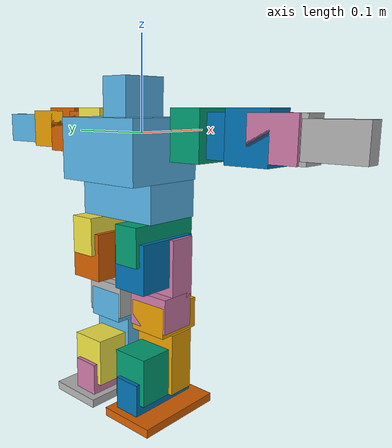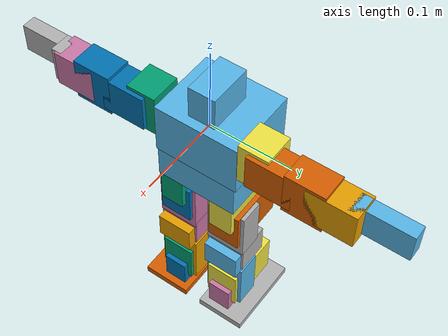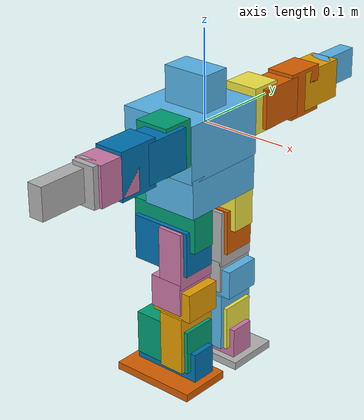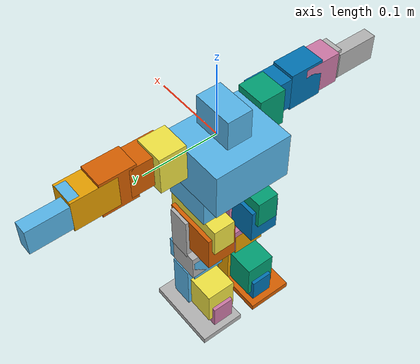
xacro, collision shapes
<?xml version="1.0"?>
<robot xmlns:xacro="http://www.ros.org/wiki/xacro" name="bioloid_compr_18_servos">
<!-- Bioloid Comprehensive humanoid with 18 AX-12+ servos -->

<xacro:property name="pi" value="3.14159"/>
<xacro:property name="cad_dir" value="file:///mnt/STORAGE/Dropbox/Personal/Programming/Bioloid/CAD"/>
<!-- Typically, STL/DAE model units are in mm, but RViz units are in m, hence models must be scaled down by 1000. -->
<xacro:macro name="default_geometry" params="cad_file suffix:=_FCD-Conv_BDR-Col extension:=dae">
    <geometry>
        <mesh filename="${cad_dir}/${cad_file}${suffix}.${extension}" scale="0.001 0.001 0.001"/>
    </geometry>
</xacro:macro>
<xacro:macro name="z_rot">
    <axis xyz="0 0 1"/>
</xacro:macro>
<xacro:macro name="shoulder_swing_joint" params="prefix reflect">
    <joint name="${prefix}_shoulder_swing_joint" type="revolute">
        <parent link="torso_link"/>
        <origin xyz="${reflect*(-0.032)} 0 0" rpy="${reflect*(-pi/2)} 0 ${reflect*(pi/2)}"/>
        <xacro:z_rot/>
        <child link="${prefix}_shoulder_swing_link"/>
        <limit lower="${-pi}" upper="${pi}" effort="10" velocity="1.0"/>
    </joint>
</xacro:macro>
<xacro:macro name="shoulder_lateral_joint" params="prefix reflect">
    <joint name="${prefix}_shoulder_lateral_joint" type="revolute">
        <parent link="${prefix}_shoulder_swing_link"/>
        <origin xyz="${reflect*(-0.014)} 0 ${reflect*0.044}" rpy="${-pi/2} ${pi/2} 0"/>
        <xacro:z_rot/>
        <child link="${prefix}_upper_arm_link"/>
        <limit lower="${-pi}" upper="${pi}" effort="10" velocity="1.0"/>
    </joint>
</xacro:macro>
<xacro:macro name="elbow_joint" params="prefix reflect">
    <joint name="${prefix}_elbow_joint" type="revolute">
        <parent link="${prefix}_upper_arm_link"/>
        <origin xyz="${reflect*-0.0675} 0 0" rpy="0 0 0"/>
        <xacro:z_rot/>
        <child link="${prefix}_lower_arm_link"/>
        <limit lower="${-1.77}" upper="${1.77}" effort="10" velocity="1.0"/>
    </joint>
</xacro:macro>
<xacro:macro name="hand_joint" params="prefix">
    <joint name="${prefix}_hand_joint" type="fixed">
        <parent link="${prefix}_lower_arm_link"/>
        <origin xyz="0 0 0" rpy="0 0 0"/>
        <child link="${prefix}_hand_link"/>
    </joint>
</xacro:macro>
<xacro:macro name="hip_twist_joint" params="prefix reflect rotatex rotatez">
    <joint name="${prefix}_hip_twist_joint" type="revolute">
        <parent link="torso_link"/>
        <origin xyz="${reflect*(-0.033)} 0.016 -0.0655" rpy="${rotatex*pi} 0 ${rotatez*pi}"/>
        <xacro:z_rot/>
        <child link="${prefix}_hip_twist_link"/>
        <limit lower="${-pi/4}" upper="${pi/4}" effort="10" velocity="1.0"/>
    </joint>
</xacro:macro>
<xacro:macro name="hip_lateral_joint" params="prefix reflect">
    <joint name="${prefix}_hip_lateral_joint" type="revolute">
        <parent link="${prefix}_hip_twist_link"/>
        <origin xyz="0 -0.0153 ${reflect*0.05}" rpy="${reflect*pi/2} 0 0"/>
        <xacro:z_rot/>
        <child link="${prefix}_hip_lateral_link"/>
        <limit lower="${-0.3}" upper="${0.3}" effort="10" velocity="1.0"/>
    </joint>
</xacro:macro>
<xacro:macro name="hip_swing_joint" params="prefix reflect rotatex">
    <joint name="${prefix}_hip_swing_joint" type="revolute">
        <parent link="${prefix}_hip_lateral_link"/>
        <origin xyz="0 0 ${reflect*(-0.032)}" rpy="${rotatex*pi} ${-pi/2} 0"/>
        <xacro:z_rot/>
        <child link="${prefix}_upper_leg_link"/>
        <limit lower="${-pi/2}" upper="${pi/2}" effort="10" velocity="1.0"/>
    </joint>
</xacro:macro>
<xacro:macro name="knee_joint" params="prefix reflect">
    <joint name="${prefix}_knee_joint" type="revolute">
        <parent link="${prefix}_upper_leg_link"/>
        <origin xyz="${reflect*0.0145} ${reflect*0.075} 0" rpy="0 0 0"/>
        <xacro:z_rot/>
        <child link="${prefix}_lower_leg_link"/>
        <limit lower="${-pi}" upper="${0}" effort="10" velocity="1.0"/>
    </joint>
</xacro:macro>
<xacro:macro name="ankle_swing_joint" params="prefix reflect">
    <joint name="${prefix}_ankle_swing_joint" type="revolute">
        <parent link="${prefix}_lower_leg_link"/>
        <origin xyz="${reflect*-0.0145} ${reflect*0.071} 0" rpy="0 0 0"/>
        <xacro:z_rot/>
        <child link="${prefix}_ankle_swing_link"/>
        <limit lower="${-0.45}" upper="${pi/2}" effort="10" velocity="1.0"/>
    </joint>
</xacro:macro>
<xacro:macro name="ankle_lateral_joint" params="prefix reflect">
    <joint name="${prefix}_ankle_lateral_joint" type="revolute">
        <parent link="${prefix}_ankle_swing_link"/>
        <origin xyz="${reflect*0.032} 0 0" rpy="0 ${pi/2} 0"/>
        <xacro:z_rot/>
        <child link="${prefix}_ankle_lateral_link"/>
        <limit lower="${-0.7}" upper="${0.7}" effort="10" velocity="1.0"/>
    </joint>
</xacro:macro>
<xacro:macro name="foot_joint" params="prefix">
    <joint name="${prefix}_foot_joint" type="fixed">
        <parent link="${prefix}_ankle_lateral_link"/>
        <origin xyz="0 0 0" rpy="0 0 0"/>
        <child link="${prefix}_foot_link"/>
    </joint>
</xacro:macro>

<!-- Base -->
<joint name="base_to_torso_joint" type="fixed">
    <parent link="base_link"/>
    <origin xyz="0 0 0" rpy="0 0 ${pi/2}"/>
    <child link="torso_link"/>
</joint>
<link name="base_link">
</link>

<!-- Torso -->
<link name="torso_link">
    <visual>
        <xacro:default_geometry cad_file="BPF-CHEST-F"/>
        <origin rpy="${pi/2} 0 0"/>
    </visual>
    <visual>
        <xacro:default_geometry cad_file="BPF-CHEST-B"/>
        <origin rpy="${pi/2} 0 0"/>
    </visual>
    <visual>
        <xacro:default_geometry cad_file="CM-5"/>
        <origin xyz="0 0.032 -0.015" rpy="0 ${pi} 0"/>
    </visual>
    <!-- Sensor 100 -->
    <visual>
        <xacro:default_geometry cad_file="AX-S1"/>
        <origin xyz="0 0 0.025" rpy="${-pi/2} 0 ${pi}"/>
    </visual>
    <!-- Motor 1 -->
    <visual>
        <xacro:default_geometry cad_file="AX-12"/>
        <origin xyz="-0.032 0 0" rpy="${pi/2} 0 ${-pi/2}"/>
    </visual>
    <!-- Motor 2 -->
    <visual>
        <xacro:default_geometry cad_file="AX-12"/>
        <origin xyz="0.032 0 0" rpy="${pi/2} 0 ${pi/2}"/>
    </visual>
    <visual>
        <xacro:default_geometry cad_file="FP04-F8"/>
        <origin xyz="0 0.0255 -0.0465" rpy="${-pi/2} 0 ${pi/2}"/>
    </visual>
    <visual>
        <xacro:default_geometry cad_file="FP04-F8"/>
        <origin xyz="0 0.0255 -0.0843" rpy="${pi/2} 0 ${pi/2}"/>
    </visual>
    <!-- Motor 7 -->
    <visual>
        <xacro:default_geometry cad_file="AX-12"/>
        <origin xyz="-0.033 0.016 -0.0655" rpy="0 ${pi} 0"/>
    </visual>
    <!-- Motor 8 -->
    <visual>
        <xacro:default_geometry cad_file="AX-12"/>
        <origin xyz="0.033 0.016 -0.0655" rpy="0 ${pi} 0"/>
    </visual>
    <collision name="head_collision">
        <origin xyz="0 0.0122 0.035"/>
        <geometry>
		    <box size="0.033 0.054 0.044"/>
        </geometry>
    </collision>
    <collision name="torso_collision_top">
        <origin xyz="0 0.019 -0.015"/>
        <geometry>
		    <box size="0.103 0.0905 0.0635"/>
        </geometry>
    </collision>
    <collision name="torso_collision_bottom">
        <origin xyz="0 0.00625 -0.0648"/>
        <geometry>
		    <box size="0.099 0.065 0.043"/>
        </geometry>
    </collision>
    <inertial>
      <origin xyz="0 0 0"/>
      <mass value="1.0"/>
      <inertia  ixx="0.001" ixy="0.0"  ixz="0.0"  iyy="0.001"  iyz="0.0"  izz="0.001"/>
    </inertial>
</link>

<!-- Torso to right shoulder -->
<xacro:shoulder_swing_joint prefix="right" reflect="1"/>
<link name="right_shoulder_swing_link">
    <visual>
        <xacro:default_geometry cad_file="FP04-F1"/>
        <origin xyz="-0.014 0 0.044" rpy="0 ${pi} ${-pi/2}"/>
    </visual>
    <collision name="right_shoulder_collision">
        <origin xyz="-0.006 0 0.0375"/>
        <geometry>
		    <box size="0.039 0.052 0.036"/>
        </geometry>
    </collision>
    <inertial>
      <origin xyz="0 0 0"/>
      <mass value="1.0"/>
      <inertia  ixx="0.001" ixy="0.0"  ixz="0.0"  iyy="0.001"  iyz="0.0"  izz="0.001"/>
    </inertial>
</link>

<!-- Torso to left shoulder -->
<xacro:shoulder_swing_joint prefix="left" reflect="-1"/>
<link name="left_shoulder_swing_link">
    <visual>
        <xacro:default_geometry cad_file="FP04-F1"/>
        <origin xyz="0.014 0 -0.044" rpy="0 0 ${pi/2}"/>
    </visual>
    <collision name="left_shoulder_collision">
        <origin xyz="0.006 0 -0.0375"/>
        <geometry>
		    <box size="0.039 0.052 0.036"/>
        </geometry>
    </collision>
    <inertial>
      <origin xyz="0 0 0"/>
      <mass value="1.0"/>
      <inertia  ixx="0.001" ixy="0.0"  ixz="0.0"  iyy="0.001"  iyz="0.0"  izz="0.001"/>
    </inertial>
</link>

<!-- Right shoulder to upper arm -->
<xacro:shoulder_lateral_joint prefix="right" reflect="1"/>
<link name="right_upper_arm_link">
    <visual>
        <xacro:default_geometry cad_file="AX-12"/>
        <origin xyz="0 0 0" rpy="${pi} 0 ${pi/2}"/>
    </visual>
    <visual>
        <xacro:default_geometry cad_file="BPF-BU"/>
        <origin xyz="0 0 0.0185" rpy="${pi/2} 0 0"/>
    </visual>
    <visual>
        <xacro:default_geometry cad_file="BPF-WA"/>
        <origin xyz="0 0 0.019" rpy="${pi/2} 0 0"/>
    </visual>
    <visual>
        <xacro:default_geometry cad_file="FP04-F3"/>
        <origin xyz="-0.0415 0 0" rpy="0 0 ${-pi/2}"/>
    </visual>
    <visual>
        <xacro:default_geometry cad_file="FP04-F2"/>
        <origin xyz="-0.0675 0 0" rpy="0 ${pi/2} 0"/>
    </visual>
    <collision name="right_upper arm_collision_proximal">
        <origin xyz="-0.0148 0 0"/>
        <geometry>
		    <box size="0.054 0.033 0.044"/>
        </geometry>
    </collision>
    <collision name="right_upper arm_collision_distal">
        <origin xyz="-0.0555 0 0"/>
        <geometry>
		    <box size="0.047 0.033 0.052"/>
        </geometry>
    </collision>
    <inertial>
      <origin xyz="0 0 0"/>
      <mass value="1.0"/>
      <inertia  ixx="0.001" ixy="0.0"  ixz="0.0"  iyy="0.001"  iyz="0.0"  izz="0.001"/>
    </inertial>
</link>

<!-- Left shoulder to upper arm -->
<xacro:shoulder_lateral_joint prefix="left" reflect="-1"/>
<link name="left_upper_arm_link">
    <visual>
        <xacro:default_geometry cad_file="AX-12"/>
        <origin xyz="0 0 0" rpy="0 0 ${pi/2}"/>
    </visual>
    <visual>
        <xacro:default_geometry cad_file="BPF-BU"/>
        <origin xyz="0 0 -0.0185" rpy="${-pi/2} 0 0"/>
    </visual>
    <visual>
        <xacro:default_geometry cad_file="BPF-WA"/>
        <origin xyz="0 0 -0.019" rpy="${-pi/2} 0 0"/>
    </visual>
    <visual>
        <xacro:default_geometry cad_file="FP04-F3"/>
        <origin xyz="0.0415 0 0" rpy="0 0 ${pi/2}"/>
    </visual>
    <visual>
        <xacro:default_geometry cad_file="FP04-F2"/>
        <origin xyz="0.0675 0 0" rpy="0 ${-pi/2} 0"/>
    </visual>
    <collision name="left_upper arm_collision_proximal">
        <origin xyz="0.0148 0 0"/>
        <geometry>
		    <box size="0.054 0.033 0.044"/>
        </geometry>
    </collision>
    <collision name="left_upper arm_collision_distal">
        <origin xyz="0.0555 0 0"/>
        <geometry>
		    <box size="0.047 0.033 0.052"/>
        </geometry>
    </collision>
    <inertial>
      <origin xyz="0 0 0"/>
      <mass value="1.0"/>
      <inertia  ixx="0.001" ixy="0.0"  ixz="0.0"  iyy="0.001"  iyz="0.0"  izz="0.001"/>
    </inertial>
</link>

<!-- Right upper arm to lower arm -->
<xacro:elbow_joint prefix="right" reflect="1"/>
<link name="right_lower_arm_link">
    <!-- Motor 5 -->
    <visual>
        <xacro:default_geometry cad_file="AX-12"/>
        <origin xyz="0 0 0" rpy="${pi} 0 ${pi/2}"/>
    </visual>
    <visual>
        <xacro:default_geometry cad_file="BPF-BU"/>
        <origin xyz="0 0 0.0185" rpy="${pi/2} 0 0"/>
    </visual>
    <visual>
        <xacro:default_geometry cad_file="BPF-WA"/>
        <origin xyz="0 0 0.019" rpy="${pi/2} 0 0"/>
    </visual>
    <visual>
        <xacro:default_geometry cad_file="FP04-F3"/>
        <origin xyz="-0.0415 0 0" rpy="0 0 ${-pi/2}"/>
    </visual>
    <collision name="right_lower_arm_collision">
        <origin xyz="-0.0135 0 0"/>
        <geometry>
		    <box size="0.051 0.033 0.044"/>
        </geometry>
    </collision>
    <inertial>
      <origin xyz="0 0 0"/>
      <mass value="1.0"/>
      <inertia  ixx="0.001" ixy="0.0"  ixz="0.0"  iyy="0.001"  iyz="0.0"  izz="0.001"/>
    </inertial>
</link>

<!-- Right lower arm to hand -->
<xacro:hand_joint prefix="right"/>
<link name="right_hand_link">
    <visual>
        <xacro:default_geometry cad_file="FP04-F11"/>
        <origin xyz="-0.0415 0 0" rpy="${-pi} ${pi/2} 0"/>
    </visual>
    <collision name="right_palm_collision">
        <origin xyz="-0.039 0 0"/>
        <geometry>
		    <box size="0.0131 0.0265 0.044"/>
        </geometry>
    </collision>
    <collision name="right_fingers_collision">
        <origin xyz="-0.0701 -0.0077 0"/>
        <geometry>
		    <box size="0.0575 0.0175 0.035"/>
        </geometry>
    </collision>
    <inertial>
      <origin xyz="0 0 0"/>
      <mass value="1.0"/>
      <inertia  ixx="0.001" ixy="0.0"  ixz="0.0"  iyy="0.001"  iyz="0.0"  izz="0.001"/>
    </inertial>
</link>

<!-- Left upper arm to lower arm -->
<xacro:elbow_joint prefix="left" reflect="-1"/>
<link name="left_lower_arm_link">
    <!-- Motor 6 -->
    <visual>
        <xacro:default_geometry cad_file="AX-12"/>
        <origin xyz="0 0 0" rpy="0 0 ${pi/2}"/>
    </visual>
    <visual>
        <xacro:default_geometry cad_file="BPF-BU"/>
        <origin xyz="0 0 -0.0185" rpy="${-pi/2} 0 0"/>
    </visual>
    <visual>
        <xacro:default_geometry cad_file="BPF-WA"/>
        <origin xyz="0 0 -0.019" rpy="${-pi/2} 0 0"/>
    </visual>
    <visual>
        <xacro:default_geometry cad_file="FP04-F3"/>
        <origin xyz="0.0415 0 0" rpy="0 0 ${pi/2}"/>
    </visual>
    <collision name="left_lower_arm_collision">
        <origin xyz="0.017 0 0"/>
        <geometry>
		    <box size="0.058 0.033 0.044"/>
        </geometry>
    </collision>
    <inertial>
      <origin xyz="0 0 0"/>
      <mass value="1.0"/>
      <inertia  ixx="0.001" ixy="0.0"  ixz="0.0"  iyy="0.001"  iyz="0.0"  izz="0.001"/>
    </inertial>
</link>

<!-- Left lower arm to hand -->
<xacro:hand_joint prefix="left"/>
<link name="left_hand_link">
    <visual>
        <xacro:default_geometry cad_file="FP04-F11"/>
        <origin xyz="0.0415 0 0" rpy="0 ${pi/2} 0"/>
    </visual>
    <collision name="left_palm_collision">
        <origin xyz="0.039 0 0"/>
        <geometry>
		    <box size="0.0131 0.0265 0.044"/>
        </geometry>
    </collision>
    <collision name="left_fingers_collision">
        <origin xyz="0.0701 0.0077 0"/>
        <geometry>
		    <box size="0.0575 0.0175 0.035"/>
        </geometry>
    </collision>
    <inertial>
      <origin xyz="0 0 0"/>
      <mass value="1.0"/>
      <inertia  ixx="0.001" ixy="0.0"  ixz="0.0"  iyy="0.001"  iyz="0.0"  izz="0.001"/>
    </inertial>
</link>

<!-- Torso to right hip twist -->
<xacro:hip_twist_joint prefix="right" reflect="1" rotatex="1" rotatez="0"/>
<link name="right_hip_twist_link">
    <visual>
        <xacro:default_geometry cad_file="FP04-F5"/>
        <origin xyz="0 0 0.05" rpy="${pi} 0 0"/>
    </visual>
    <collision name="right_hip_twist_collision">
        <origin xyz="0 0.0008 0.041"/>
        <geometry>
		    <box size="0.029 0.083 0.0405"/>
        </geometry>
    </collision>
    <inertial>
      <origin xyz="0 0 0"/>
      <mass value="1.0"/>
      <inertia  ixx="0.001" ixy="0.0"  ixz="0.0"  iyy="0.001"  iyz="0.0"  izz="0.001"/>
    </inertial>
</link>

<!-- Torso to left hip twist -->
<xacro:hip_twist_joint prefix="left" reflect="-1" rotatex="0" rotatez="1"/>
<link name="left_hip_twist_link">
    <visual>
        <xacro:default_geometry cad_file="FP04-F5"/>
        <origin xyz="0 0 -0.05" rpy="0 0 ${pi}"/>
    </visual>
    <collision name="left_hip_twist_collision">
        <origin xyz="0 0.0008 -0.041"/>
        <geometry>
		    <box size="0.029 0.083 0.0405"/>
        </geometry>
    </collision>
    <inertial>
      <origin xyz="0 0 0"/>
      <mass value="1.0"/>
      <inertia  ixx="0.001" ixy="0.0"  ixz="0.0"  iyy="0.001"  iyz="0.0"  izz="0.001"/>
    </inertial>
</link>

<!-- Right hip twist to hip lateral -->
<xacro:hip_lateral_joint prefix="right" reflect="1"/>
<link name="right_hip_lateral_link">
    <!-- Motor 9 -->
    <visual>
        <xacro:default_geometry cad_file="AX-12"/>
        <origin xyz="0 0 0" rpy="0 0 ${pi}"/>
    </visual>
    <visual>
        <xacro:default_geometry cad_file="FP04-F6"/>
        <origin xyz="-0.019 0.0145 0.016" rpy="0 ${-pi/2} ${-pi/2}"/>
    </visual>
    <visual>
        <xacro:default_geometry cad_file="FP04-F6"/>
        <origin xyz="0.019 0.0145 0.016" rpy="0 ${-pi/2} ${pi/2}"/>
    </visual>
    <!-- Motor 11 -->
    <visual>
        <xacro:default_geometry cad_file="AX-12"/>
        <origin xyz="0 0 -0.032" rpy="${pi} ${-pi/2} 0"/>
    </visual>
    <visual>
        <xacro:default_geometry cad_file="BPF-BU"/>
        <origin xyz="0 0 -0.05" rpy="${-pi/2} 0 0"/>
    </visual>
    <visual>
        <xacro:default_geometry cad_file="FP04-F7"/>
        <origin xyz="0 0.0145 -0.051" rpy="${pi/2} 0 ${-pi/2}"/>
    </visual>
    <collision name="right_hip_lateral_collision">
        <origin xyz="0 0.0135 -0.0153"/>
        <geometry>
		    <box size="0.04 0.051 0.0721"/>
        </geometry>
    </collision>
    <inertial>
      <origin xyz="0 0 0"/>
      <mass value="1.0"/>
      <inertia  ixx="0.001" ixy="0.0"  ixz="0.0"  iyy="0.001"  iyz="0.0"  izz="0.001"/>
    </inertial>
</link>

<!-- Left hip twist to hip lateral -->
<xacro:hip_lateral_joint prefix="left" reflect="-1"/>
<link name="left_hip_lateral_link">
    <!-- Motor 10 -->
    <visual>
        <xacro:default_geometry cad_file="AX-12"/>
        <origin xyz="0 0 0" rpy="${pi} 0 0"/>
    </visual>
    <visual>
        <xacro:default_geometry cad_file="FP04-F6"/>
        <origin xyz="-0.019 0.0145 -0.016" rpy="0 ${pi/2} ${-pi/2}"/>
    </visual>
    <visual>
        <xacro:default_geometry cad_file="FP04-F6"/>
        <origin xyz="0.019 0.0145 -0.016" rpy="0 ${pi/2} ${pi/2}"/>
    </visual>
    <!-- Motor 12 -->
    <visual>
        <xacro:default_geometry cad_file="AX-12"/>
        <origin xyz="0 0 0.032" rpy="${pi} ${-pi/2} 0"/>
    </visual>
    <visual>
        <xacro:default_geometry cad_file="BPF-BU"/>
        <origin xyz="0 0 0.05" rpy="${pi/2} 0 0"/>
    </visual>
    <visual>
        <xacro:default_geometry cad_file="FP04-F7"/>
        <origin xyz="0 0.0145 0.051" rpy="${-pi/2} 0 ${-pi/2}"/>
    </visual>
    <collision name="left_hip_lateral_collision">
        <origin xyz="0 0.0135 0.0153"/>
        <geometry>
		    <box size="0.04 0.051 0.0721"/>
        </geometry>
    </collision>
    <inertial>
      <origin xyz="0 0 0"/>
      <mass value="1.0"/>
      <inertia  ixx="0.001" ixy="0.0"  ixz="0.0"  iyy="0.001"  iyz="0.0"  izz="0.001"/>
    </inertial>
</link>

<!-- Right hip lateral to upper leg -->
<xacro:hip_swing_joint prefix="right" reflect="1" rotatex="0"/>
<link name="right_upper_leg_link">
    <visual>
        <xacro:default_geometry cad_file="FP04-F4"/>
        <origin xyz="0 0 0" rpy="${-pi/2} ${pi/2} 0"/>
    </visual>
    <visual>
        <xacro:default_geometry cad_file="FP04-F1"/>
        <origin xyz="0.0145 0.075 0" rpy="${pi/2} ${-pi/2} 0"/>
    </visual>
    <collision name="right_upper_leg_proximal_collision">
        <origin xyz="0 0.0214 0"/>
        <geometry>
		    <box size="0.03 0.065 0.049"/>
        </geometry>
    </collision>
    <collision name="right_upper_leg_distal_collision">
        <origin xyz="0.0065 0.0675 0"/>
        <geometry>
		    <box size="0.04 0.0371 0.049"/>
        </geometry>
    </collision>
    <inertial>
      <origin xyz="0 0 0"/>
      <mass value="1.0"/>
      <inertia  ixx="0.001" ixy="0.0"  ixz="0.0"  iyy="0.001"  iyz="0.0"  izz="0.001"/>
    </inertial>
</link>

<!-- Left hip lateral to upper leg -->
<xacro:hip_swing_joint prefix="left" reflect="-1" rotatex="1"/>
<link name="left_upper_leg_link">
    <visual>
        <xacro:default_geometry cad_file="FP04-F4"/>
        <origin xyz="0 0 0" rpy="${pi/2} ${pi/2} 0"/>
    </visual>
    <visual>
        <xacro:default_geometry cad_file="FP04-F1"/>
        <origin xyz="-0.0145 -0.075 0" rpy="${-pi/2} ${-pi/2} 0"/>
    </visual>
    <collision name="left_upper_leg_proximal_collision">
        <origin xyz="0 -0.0214 0"/>
        <geometry>
		    <box size="0.03 0.065 0.049"/>
        </geometry>
    </collision>
    <collision name="left_upper_leg_distal_collision">
        <origin xyz="-0.0065 -0.0675 0"/>
        <geometry>
		    <box size="0.04 0.0371 0.049"/>
        </geometry>
    </collision>
    <inertial>
      <origin xyz="0 0 0"/>
      <mass value="1.0"/>
      <inertia  ixx="0.001" ixy="0.0"  ixz="0.0"  iyy="0.001"  iyz="0.0"  izz="0.001"/>
    </inertial>
</link>

<!-- Right upper leg to lower leg -->
<xacro:knee_joint prefix="right" reflect="1"/>
<link name="right_lower_leg_link">
    <!-- Motor 13 -->
    <visual>
        <xacro:default_geometry cad_file="AX-12"/>
        <origin xyz="0 0 0" rpy="0 ${pi} ${-pi/2}"/>
    </visual>
    <visual>
        <xacro:default_geometry cad_file="FP04-F3"/>
        <origin xyz="-0.0145 0.019 0" rpy="0 0 ${pi}"/>
    </visual>
    <visual>
        <xacro:default_geometry cad_file="FP04-F4"/>
        <origin xyz="-0.0145 0.071 0" rpy="${pi/2} ${-pi/2} 0"/>
    </visual>
    <collision name="right_lower_leg_proximal_collision">
        <origin xyz="-0.0135 0 0"/>
        <geometry>
		    <box size="0.051 0.033 0.044"/>
        </geometry>
    </collision>
    <collision name="right_lower_leg_distal_collision">
        <origin xyz="-0.0145 0.0492 0"/>
        <geometry>
		    <box size="0.03 0.067 0.049"/>
        </geometry>
    </collision>
    <inertial>
      <origin xyz="0 0 0"/>
      <mass value="1.0"/>
      <inertia  ixx="0.001" ixy="0.0"  ixz="0.0"  iyy="0.001"  iyz="0.0"  izz="0.001"/>
    </inertial>
</link>

<!-- Left upper leg to lower leg -->
<xacro:knee_joint prefix="left" reflect="-1"/>
<link name="left_lower_leg_link">
    <!-- Motor 14 -->
    <visual>
        <xacro:default_geometry cad_file="AX-12"/>
        <origin xyz="0 0 0" rpy="0 0 ${pi/2}"/>
    </visual>
    <visual>
        <xacro:default_geometry cad_file="FP04-F3"/>
        <origin xyz="0.0145 -0.019 0" rpy="0 0 0"/>
    </visual>
    <visual>
        <xacro:default_geometry cad_file="FP04-F4"/>
        <origin xyz="0.0145 -0.071 0" rpy="${-pi/2} ${-pi/2} 0"/>
    </visual>
    <collision name="left_lower_leg_proximal_collision">
        <origin xyz="0.0135 0 0"/>
        <geometry>
		    <box size="0.051 0.033 0.044"/>
        </geometry>
    </collision>
    <collision name="left_lower_leg_distal_collision">
        <origin xyz="0.0145 -0.0492 0"/>
        <geometry>
		    <box size="0.03 0.067 0.049"/>
        </geometry>
    </collision>
    <inertial>
      <origin xyz="0 0 0"/>
      <mass value="1.0"/>
      <inertia  ixx="0.001" ixy="0.0"  ixz="0.0"  iyy="0.001"  iyz="0.0"  izz="0.001"/>
    </inertial>
</link>

<!-- Right lower leg to ankle swing -->
<xacro:ankle_swing_joint prefix="right" reflect="1"/>
<link name="right_ankle_swing_link">
    <!-- Motor 15 -->
    <visual>
        <xacro:default_geometry cad_file="AX-12"/>
        <origin xyz="0 0 0" rpy="0 ${pi} 0"/>
    </visual>
    <visual>
        <xacro:default_geometry cad_file="FP04-F7"/>
        <origin xyz="-0.019 -0.0145 0" rpy="${pi} 0 ${pi/2}"/>
    </visual>
    <!-- Motor 17 -->
    <visual>
        <xacro:default_geometry cad_file="AX-12"/>
        <origin xyz="0.032 0 0" rpy="0 ${pi/2} 0"/>
    </visual>
    <visual>
        <xacro:default_geometry cad_file="FP04-F6"/>
        <origin xyz="0.048 -0.0145 0.019" rpy="${-pi/2} 0 0"/>
    </visual>
    <visual>
        <xacro:default_geometry cad_file="FP04-F6"/>
        <origin xyz="0.048 -0.0145 -0.019" rpy="${pi/2} 0 0"/>
    </visual>
    <collision name="right_ankle_swing_collision">
        <origin xyz="0.0167 -0.0135 0"/>
        <geometry>
		    <box size="0.0721 0.051 0.04"/>
        </geometry>
    </collision>
    <inertial>
      <origin xyz="0 0 0"/>
      <mass value="1.0"/>
      <inertia  ixx="0.001" ixy="0.0"  ixz="0.0"  iyy="0.001"  iyz="0.0"  izz="0.001"/>
    </inertial>
</link>

<!-- Left lower leg to ankle swing -->
<xacro:ankle_swing_joint prefix="left" reflect="-1"/>
<link name="left_ankle_swing_link">
    <!-- Motor 16 -->
    <visual>
        <xacro:default_geometry cad_file="AX-12"/>
        <origin xyz="0 0 0" rpy="0 0 ${pi}"/>
    </visual>
    <visual>
        <xacro:default_geometry cad_file="FP04-F7"/>
        <origin xyz="0.019 0.0145 0" rpy="${pi} 0 ${-pi/2}"/>
    </visual>
    <!-- Motor 18 -->
    <visual>
        <xacro:default_geometry cad_file="AX-12"/>
        <origin xyz="-0.032 0 0" rpy="${pi} ${pi/2} 0"/>
    </visual>
    <visual>
        <xacro:default_geometry cad_file="FP04-F6"/>
        <origin xyz="-0.048 0.0145 -0.019" rpy="${pi/2} 0 ${pi}"/>
    </visual>
    <visual>
        <xacro:default_geometry cad_file="FP04-F6"/>
        <origin xyz="-0.048 0.0145 0.019" rpy="${-pi/2} 0 ${pi}"/>
    </visual>
    <collision name="left_ankle_swing_collision">
        <origin xyz="-0.0167 0.0135 0"/>
        <geometry>
		    <box size="0.0721 0.051 0.04"/>
        </geometry>
    </collision>
    <inertial>
      <origin xyz="0 0 0"/>
      <mass value="1.0"/>
      <inertia  ixx="0.001" ixy="0.0"  ixz="0.0"  iyy="0.001"  iyz="0.0"  izz="0.001"/>
    </inertial>
</link>

<!-- Right ankle swing to ankle lateral -->
<xacro:ankle_lateral_joint prefix="right" reflect="1"/>
<link name="right_ankle_lateral_link">
    <visual>
        <xacro:default_geometry cad_file="BPF-BU"/>
        <origin xyz="0 0 -0.05" rpy="${-pi/2} 0 0"/>
    </visual>
    <visual>
        <xacro:default_geometry cad_file="FP04-F5"/>
        <origin xyz="0 0 -0.0153" rpy="${-pi/2} ${pi} 0"/>
    </visual>
    <collision name="right_ankle_lateral_collision">
        <origin xyz="0 0.009 -0.016"/>
        <geometry>
		    <box size="0.029 0.0405 0.083"/>
        </geometry>
    </collision>
    <inertial>
      <origin xyz="0 0 0"/>
      <mass value="1.0"/>
      <inertia  ixx="0.001" ixy="0.0"  ixz="0.0"  iyy="0.001"  iyz="0.0"  izz="0.001"/>
    </inertial>
</link>

<!-- Right ankle lateral to foot -->
<xacro:foot_joint prefix="right"/>
<link name="right_foot_link">
    <visual>
        <xacro:default_geometry cad_file="FP04-F12"/>
        <origin xyz="-0.008 0.0235 -0.016" rpy="0 ${-pi/2} 0"/>
    </visual>
    <collision name="right_foot_collision">
        <origin xyz="-0.008 0.0277 -0.016"/>
        <geometry>
		    <box size="0.061 0.009 0.101"/>
        </geometry>
    </collision>
    <inertial>
      <origin xyz="0 0 0"/>
      <mass value="1.0"/>
      <inertia  ixx="0.001" ixy="0.0"  ixz="0.0"  iyy="0.001"  iyz="0.0"  izz="0.001"/>
    </inertial>
</link>

<!-- Left ankle swing to ankle lateral -->
<xacro:ankle_lateral_joint prefix="left" reflect="-1"/>
<link name="left_ankle_lateral_link">
    <visual>
        <xacro:default_geometry cad_file="BPF-BU"/>
        <origin xyz="0 0 0.05" rpy="${pi/2} 0 0"/>
    </visual>
    <visual>
        <xacro:default_geometry cad_file="FP04-F5"/>
        <origin xyz="0 0 0.0153" rpy="${pi/2} ${pi} 0"/>
    </visual>
    <collision name="left_ankle_lateral_collision">
        <origin xyz="0 -0.009 0.016"/>
        <geometry>
		    <box size="0.029 0.0405 0.083"/>
        </geometry>
    </collision>
    <inertial>
      <origin xyz="0 0 0"/>
      <mass value="1.0"/>
      <inertia  ixx="0.001" ixy="0.0"  ixz="0.0"  iyy="0.001"  iyz="0.0"  izz="0.001"/>
    </inertial>
</link>

<!-- Left ankle lateral to foot -->
<xacro:foot_joint prefix="left"/>
<link name="left_foot_link">
    <visual>
        <xacro:default_geometry cad_file="FP04-F12"/>
        <origin xyz="0.008 -0.0235 0.016" rpy="${pi} ${pi/2} 0"/>
    </visual>
    <collision name="left_foot_collision">
        <origin xyz="0.008 -0.0277 0.016"/>
        <geometry>
		    <box size="0.061 0.009 0.101"/>
        </geometry>
    </collision>
    <inertial>
      <origin xyz="0 0 0"/>
      <mass value="1.0"/>
      <inertia  ixx="0.001" ixy="0.0"  ixz="0.0"  iyy="0.001"  iyz="0.0"  izz="0.001"/>
    </inertial>
</link>

</robot>
